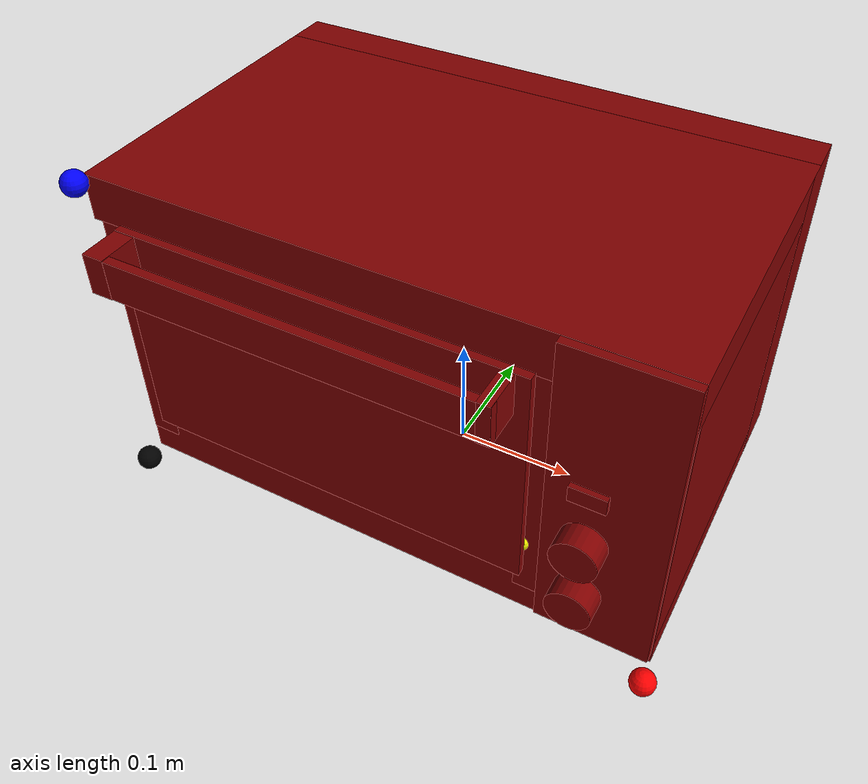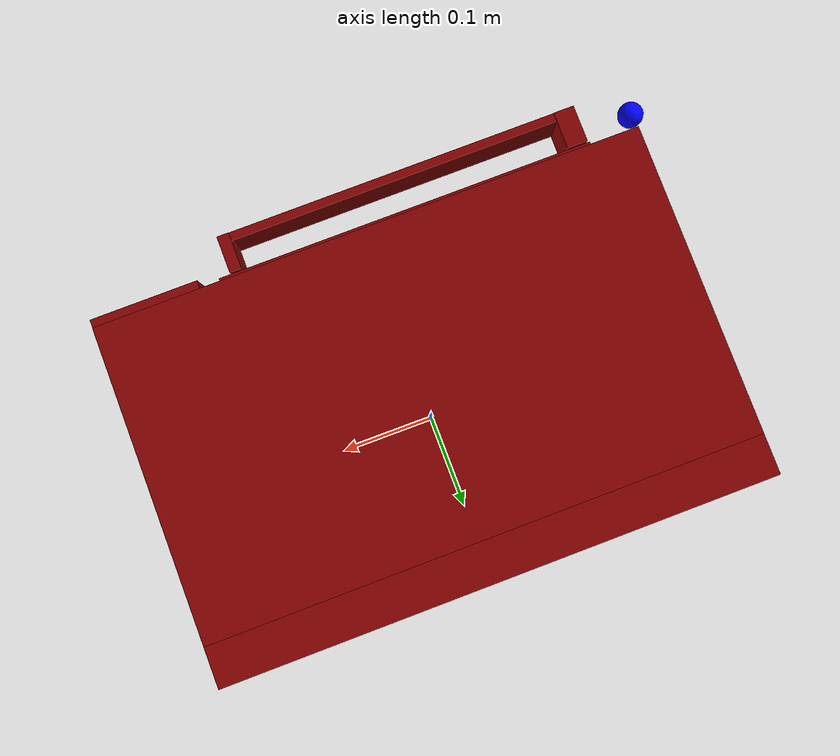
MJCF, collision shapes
<?xml version='1.0' encoding='utf-8'?>
<mujoco model="model">
    <compiler angle="radian" />
    <asset>
        <mesh file="visuals/Oven031_Door001.obj" name="Oven031_Door_vis" />
        <mesh file="visuals/Oven031_Knob001.obj" name="Oven031_Knob001_vis" />
        <mesh file="visuals/Oven031_Body001.obj" name="Oven031_Body_vis" />
        <mesh file="visuals/Oven031_Button001.obj" name="Oven031_Button_vis" />
        <mesh file="visuals/Oven031_Knob002.obj" name="Oven031_Knob002_vis" />
        <mesh file="visuals/Oven031_Door001_Clear.obj" name="Oven031_Door_Clear_vis" />
        <mesh file="visuals/Oven031_Container001.obj" name="Oven031_Container_vis" />
        <texture file="visuals/T_Oven031_BC001.png" name="T_Oven031_BC001" type="2d" />
        <material name="material" rgba="1 1 1 1" texture="T_Oven031_BC001" />
        <material name="material_Clear" rgba="1 1 1 0.4" texture="T_Oven031_BC001" />
    </asset>
    <default>
        <default class="visual">
            <geom conaffinity="0" contype="0" group="1" type="mesh" />
        </default>
        <default class="collision">
            <geom group="0" rgba="0.5 0 0 0.5" />
        </default>
    </default>
    <worldbody>
        <body>
            <site rgba="0 0 0 1" size="0.01" pos="-0.22445128858089447 -0.15332135558128357 0" name="ext_p0" />
            <site rgba="1 0 0 1" size="0.01" pos="0.22445128858089447 -0.15332135558128357 0" name="ext_px" />
            <site rgba="0 1 0 1" size="0.01" pos="-0.22445128858089447 0.15332135558128357 0" name="ext_py" />
            <site rgba="0 0 1 1" size="0.01" pos="-0.22445128858089447 -0.15332135558128357 0.2762076258659363" name="ext_pz" />
            <site rgba="0.5 0.5 0.5 1" size="0.01" pos="-0.1749463528394699 -0.13183268904685974 0.07164236903190613" name="int_p0" />
            <site rgba="1 1 0 1" size="0.01" pos="0.1152108907699585 -0.13183268904685974 0.07164223492145538" name="int_px" />
            <site rgba="0 1 1 1" size="0.01" pos="-0.1749463528394699 0.12910602986812592 0.07164223492145538" name="int_py" />
            <site rgba="1 0 1 1" size="0.01" pos="-0.1749466508626938 -0.13183268904685974 0.24491694569587708" name="int_pz" />
            <body name="object">
                <geom mesh="Oven031_Body_vis" type="mesh" solimp="0.998 0.998 0.001" solref="0.001 1" density="100" friction="0.95 0.3 0.1" class="visual" material="material" />
                <geom class="collision" type="box" pos="-0.0014766920357942581 -0.014175787568092346 0.25863978266716003" size="0.1281106173992157 0.22517129778862 0.018757104873657227" quat="0.7071067690849304 -9.974800008194507e-08 9.974800008194507e-08 -0.7071067690849304" />
                <geom class="collision" type="box" pos="-0.21419605612754822 -0.011050879955291748 0.13953936100006104" size="0.12498609721660614 0.11685483157634735 0.01261381059885025" quat="0.49999988079071045 -0.5000000596046448 0.5000001192092896 -0.49999991059303284" />
                <geom class="collision" type="box" pos="0.16839289665222168 -0.01107381284236908 0.13953933119773865" size="0.12500755488872528 0.11685483157634735 0.05523856356739998" quat="0.49999988079071045 -0.5000000596046448 0.5000001192092896 -0.49999991059303284" />
                <geom class="collision" type="box" pos="-0.0014766901731491089 0.1213604211807251 0.13906507194042206" size="0.0256769098341465 0.22517129778862 0.138331800699234" quat="0.7071067690849304 -9.974800008194507e-08 9.974800008194507e-08 -0.7071067690849304" />
                <geom class="collision" type="box" pos="-0.0015539908781647682 -0.010919224470853806 0.030553704127669334" size="0.12485408037900925 0.2250940054655075 0.030490662902593613" quat="0.7071067690849304 -9.974800008194507e-08 9.974800008194507e-08 -0.7071067690849304" />
                <geom class="collision" type="box" pos="0.1800902932882309 -0.1447107344865799 0.1472194343805313" size="0.004168093204498291 0.1297832429409027 0.043541163206100464" quat="0.49999988079071045 -0.5000000596046448 0.5000001192092896 -0.49999991059303284" />
                <body name="Oven031_Button">
                    <joint axis="0 1 0" pos="0.16884446144104004 -0.15525871515274048 0.16628101468086243" limited="true" name="Oven031_Button_joint" range="0.0 0.002" type="slide" damping="2" frictionloss="2" armature=".01" />
                    <geom mesh="Oven031_Button_vis" type="mesh" solimp="0.998 0.998 0.001" solref="0.001 1" density="100" friction="0.95 0.3 0.1" class="visual" material="material" />
                    <geom class="collision" type="box" pos="0.168844535946846 -0.15525881946086884 0.16685688495635986" size="0.002120696008205414 0.01336456835269928 0.006437420845031738" quat="0.7071067690849304 -5.76011558450773e-08 5.76011558450773e-08 -0.7071067690849304" />
                </body>
                <body name="Oven031_Door">
                    <joint axis="1 0 0" pos="-0.03351595997810364 -0.1521720588207245 0.042903006076812744" limited="true" name="Oven031_Door_joint" range="0.0 1.5707963267948966" type="hinge" damping="2" frictionloss="2" armature=".01" />
                    <geom mesh="Oven031_Door_vis" type="mesh" solimp="0.998 0.998 0.001" solref="0.001 1" density="100" friction="0.95 0.3 0.1" class="visual" material="material" />
                    <geom class="collision" type="box" pos="-0.0356673002243042 -0.1502801477909088 0.15256483852863312" size="0.003124132752418518 0.16081230342388153 0.09399210661649704" quat="0.7071067690849304 -9.974800008194507e-08 9.974800008194507e-08 -0.7071067690849304" />
                    <geom class="collision" type="box" pos="-0.18607407808303833 -0.1704414337873459 0.23064222931861877" size="0.015711547806859016 0.008730672299861908 0.016565613448619843" quat="0.7071067690849304 0.0 -0.0 -0.7071067690849304" />
                    <geom class="collision" type="box" pos="0.11023642867803574 -0.17044144868850708 0.23064222931861877" size="0.015711547806859016 0.005056312307715416 0.016565613448619843" quat="0.7071067690849304 0.0 -0.0 -0.7071067690849304" />
                    <geom class="collision" type="box" pos="-0.03383904695510864 -0.1825212836265564 0.23064224421977997" size="0.14917047321796417 0.003578423522412777 0.016011571511626244" quat="-1.6292068494294654e-07 -0.0 0.0 -1.0" />
                    <body name="Oven031_Door_Clear">
                        <geom mesh="Oven031_Door_Clear_vis" type="mesh" solimp="0.998 0.998 0.001" solref="0.001 1" density="100" friction="0.95 0.3 0.1" class="visual" material="material_Clear" />
                        <geom class="collision" type="box" pos="-0.0356673002243042 -0.1502801477909088 0.15256483852863312" size="0.003124132752418518 0.16081230342388153 0.09399210661649704" quat="0.7071067690849304 -9.974800008194507e-08 9.974800008194507e-08 -0.7071067690849304" />
                        <geom class="collision" type="box" pos="-0.18607407808303833 -0.1704414337873459 0.23064222931861877" size="0.015711547806859016 0.008730672299861908 0.016565613448619843" quat="0.7071067690849304 0.0 -0.0 -0.7071067690849304" />
                        <geom class="collision" type="box" pos="0.11023642867803574 -0.17044144868850708 0.23064222931861877" size="0.015711547806859016 0.005056312307715416 0.016565613448619843" quat="0.7071067690849304 0.0 -0.0 -0.7071067690849304" />
                        <geom class="collision" type="box" pos="-0.03383904695510864 -0.1825212836265564 0.23064224421977997" size="0.14917047321796417 0.003578423522412777 0.016011571511626244" quat="-1.6292068494294654e-07 -0.0 0.0 -1.0" />
                    </body>
                </body>
                <body name="Oven031_Knob001">
                    <joint axis="0 1 0" pos="0.1690128892660141 -0.16939151287078857 0.12291479110717773" limited="true" name="Oven031_Knob001_joint" range="0.0 5.585053606381854" type="hinge" damping="2" frictionloss="2" armature=".01" />
                    <geom mesh="Oven031_Knob001_vis" type="mesh" solimp="0.998 0.998 0.001" solref="0.001 1" density="100" friction="0.95 0.3 0.1" class="visual" material="material" />
                    <geom class="collision" type="cylinder" pos="0.1690940260887146 -0.16324535012245178 0.12263505160808563" size="0.01717980019748211 0.009558044373989105" quat="0.4999999701976776 -0.5000000596046448 -0.4999999403953552 -0.5" />
                </body>
                <body name="Oven031_Knob002">
                    <joint axis="0 1 0" pos="0.1690128743648529 -0.1693914830684662 0.07035396993160248" limited="true" name="Oven031_Knob002_joint" range="0.0 4.014257279586958" type="hinge" damping="2" frictionloss="2" armature=".01" />
                    <geom mesh="Oven031_Knob002_vis" type="mesh" solimp="0.998 0.998 0.001" solref="0.001 1" density="100" friction="0.95 0.3 0.1" class="visual" material="material" />
                    <geom class="collision" type="cylinder" pos="0.1690940260887146 -0.1632453203201294 0.07046785205602646" size="0.01717980019748211 0.009558044373989105" quat="0.4999999701976776 -0.5000000596046448 -0.4999999403953552 -0.5" />
                </body>
                <body name="Oven031_Container">
                    <joint axis="0 -1 0" pos="-0.03350275009870529 -0.025123493745923042 0.08099598437547684" limited="true" name="Oven031_Container_joint" range="0.0 0.2" type="slide" damping="2" frictionloss="2" armature=".01" />
                    <geom mesh="Oven031_Container_vis" type="mesh" solimp="0.998 0.998 0.001" solref="0.001 1" density="100" friction="0.95 0.3 0.1" class="visual" material="material" />
                    <geom class="collision" type="box" pos="-0.03294401615858078 -0.02160477265715599 0.0821787565946579" size="0.08932340890169144 0.13245654106140137 0.004777330905199051" quat="0.7071067690849304 0.0 -0.0 -0.7071067690849304" />
                </body>
            </body>
        </body>
    </worldbody>
    <actuator>
        <motor name="Oven031_Button_joint_actuator" joint="Oven031_Button_joint" gear="10" />
        <motor name="Oven031_Door_joint_actuator" joint="Oven031_Door_joint" gear="10" />
        <motor name="Oven031_Knob001_joint_actuator" joint="Oven031_Knob001_joint" gear="10" />
        <motor name="Oven031_Knob002_joint_actuator" joint="Oven031_Knob002_joint" gear="10" />
        <motor name="Oven031_Container_joint_actuator" joint="Oven031_Container_joint" gear="10" />
    </actuator>
</mujoco>
